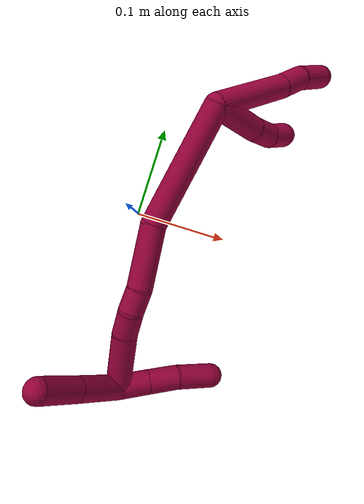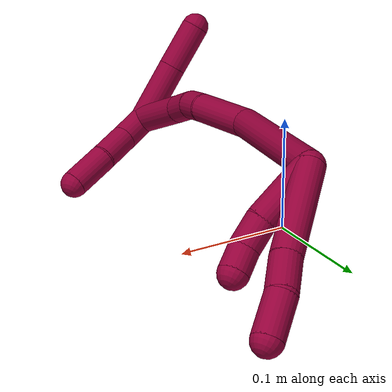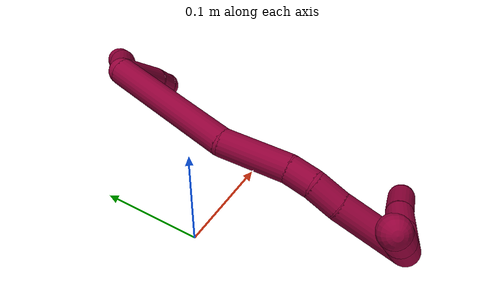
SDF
<sdf version="1.7">
 <world name="default">
  <model name="8">
   <static>0</static>
   <link name="8">
    <collision name="collision-cylinder-e_1_2_8">
     <pose>0.003342 0.009106 -0.041224 -2.92418 0.079002 -0.694894</pose>
     <geometry><cylinder><radius>0.0125</radius><length>0.084701</length></cylinder></geometry>
     <surface>
      <friction><ode><mu>1.16</mu><mu2>1.16</mu2><slip1>0</slip1><slip2>0</slip2></ode></friction>
      <contact><ode><kp>1e+06</kp><kd>1</kd><max_vel>0</max_vel><min_depth>0.001</min_depth></ode></contact>
     </surface>
    </collision>
    <visual name="visual-cylinder-e_1_2_8">
     <pose>0.003342 0.009106 -0.041224 -2.92418 0.079002 -0.694894</pose>
     <geometry><cylinder><radius>0.0125</radius><length>0.084701</length></cylinder></geometry>
     <material><ambient>0.584314 0 0.227451 1</ambient></material>
    </visual>
    <collision name="collision-cylinder-e_2_8_9">
     <pose>0.007262 0.022906 -0.096802 -2.82556 0.038206 -0.238659</pose>
     <geometry><cylinder><radius>0.0125</radius><length>0.030224</length></cylinder></geometry>
     <surface>
      <friction><ode><mu>1.16</mu><mu2>1.16</mu2><slip1>0</slip1><slip2>0</slip2></ode></friction>
      <contact><ode><kp>1e+06</kp><kd>1</kd><max_vel>0</max_vel><min_depth>0.001</min_depth></ode></contact>
     </surface>
    </collision>
    <visual name="visual-cylinder-e_2_8_9">
     <pose>0.007262 0.022906 -0.096802 -2.82556 0.038206 -0.238659</pose>
     <geometry><cylinder><radius>0.0125</radius><length>0.030224</length></cylinder></geometry>
     <material><ambient>0.584314 0 0.227451 1</ambient></material>
    </visual>
    <collision name="collision-cylinder-e_3_9_6">
     <pose>0.00679 0.029215 -0.128587 -3.04918 -0.059841 1.1489</pose>
     <geometry><cylinder><radius>0.0125</radius><length>0.035075</length></cylinder></geometry>
     <surface>
      <friction><ode><mu>1.16</mu><mu2>1.16</mu2><slip1>0</slip1><slip2>0</slip2></ode></friction>
      <contact><ode><kp>1e+06</kp><kd>1</kd><max_vel>0</max_vel><min_depth>0.001</min_depth></ode></contact>
     </surface>
    </collision>
    <visual name="visual-cylinder-e_3_9_6">
     <pose>0.00679 0.029215 -0.128587 -3.04918 -0.059841 1.1489</pose>
     <geometry><cylinder><radius>0.0125</radius><length>0.035075</length></cylinder></geometry>
     <material><ambient>0.584314 0 0.227451 1</ambient></material>
    </visual>
    <collision name="collision-cylinder-e_1_2_10">
     <pose>-0.002452 -0.011218 -0.024116 2.70619 -0.091948 -0.410113</pose>
     <geometry><cylinder><radius>0.0125</radius><length>0.05342</length></cylinder></geometry>
     <surface>
      <friction><ode><mu>1.16</mu><mu2>1.16</mu2><slip1>0</slip1><slip2>0</slip2></ode></friction>
      <contact><ode><kp>1e+06</kp><kd>1</kd><max_vel>0</max_vel><min_depth>0.001</min_depth></ode></contact>
     </surface>
    </collision>
    <visual name="visual-cylinder-e_1_2_10">
     <pose>-0.002452 -0.011218 -0.024116 2.70619 -0.091948 -0.410113</pose>
     <geometry><cylinder><radius>0.0125</radius><length>0.05342</length></cylinder></geometry>
     <material><ambient>0.584314 0 0.227451 1</ambient></material>
    </visual>
    <collision name="collision-cylinder-e_2_10_11">
     <pose>-0.006996 -0.025652 -0.060242 2.87996 -0.166635 -1.13115</pose>
     <geometry><cylinder><radius>0.0125</radius><length>0.025216</length></cylinder></geometry>
     <surface>
      <friction><ode><mu>1.16</mu><mu2>1.16</mu2><slip1>0</slip1><slip2>0</slip2></ode></friction>
      <contact><ode><kp>1e+06</kp><kd>1</kd><max_vel>0</max_vel><min_depth>0.001</min_depth></ode></contact>
     </surface>
    </collision>
    <visual name="visual-cylinder-e_2_10_11">
     <pose>-0.006996 -0.025652 -0.060242 2.87996 -0.166635 -1.13115</pose>
     <geometry><cylinder><radius>0.0125</radius><length>0.025216</length></cylinder></geometry>
     <material><ambient>0.584314 0 0.227451 1</ambient></material>
    </visual>
    <collision name="collision-cylinder-e_3_11_5">
     <pose>-0.009469 -0.028756 -0.082927 -3.13115 -0.03574 2.5731</pose>
     <geometry><cylinder><radius>0.0125</radius><length>0.021364</length></cylinder></geometry>
     <surface>
      <friction><ode><mu>1.16</mu><mu2>1.16</mu2><slip1>0</slip1><slip2>0</slip2></ode></friction>
      <contact><ode><kp>1e+06</kp><kd>1</kd><max_vel>0</max_vel><min_depth>0.001</min_depth></ode></contact>
     </surface>
    </collision>
    <visual name="visual-cylinder-e_3_11_5">
     <pose>-0.009469 -0.028756 -0.082927 -3.13115 -0.03574 2.5731</pose>
     <geometry><cylinder><radius>0.0125</radius><length>0.021364</length></cylinder></geometry>
     <material><ambient>0.584314 0 0.227451 1</ambient></material>
    </visual>
    <collision name="collision-cylinder-e_1_2_12">
     <pose>-0.020967 -0.05157 0.030406 1.03806 -0.336874 -0.19368</pose>
     <geometry><cylinder><radius>0.0125</radius><length>0.126864</length></cylinder></geometry>
     <surface>
      <friction><ode><mu>1.16</mu><mu2>1.16</mu2><slip1>0</slip1><slip2>0</slip2></ode></friction>
      <contact><ode><kp>1e+06</kp><kd>1</kd><max_vel>0</max_vel><min_depth>0.001</min_depth></ode></contact>
     </surface>
    </collision>
    <visual name="visual-cylinder-e_1_2_12">
     <pose>-0.020967 -0.05157 0.030406 1.03806 -0.336874 -0.19368</pose>
     <geometry><cylinder><radius>0.0125</radius><length>0.126864</length></cylinder></geometry>
     <material><ambient>0.584314 0 0.227451 1</ambient></material>
    </visual>
    <collision name="collision-cylinder-e_2_12_13">
     <pose>-0.046894 -0.131964 0.070042 1.26088 -0.162451 -0.118677</pose>
     <geometry><cylinder><radius>0.0125</radius><length>0.061338</length></cylinder></geometry>
     <surface>
      <friction><ode><mu>1.16</mu><mu2>1.16</mu2><slip1>0</slip1><slip2>0</slip2></ode></friction>
      <contact><ode><kp>1e+06</kp><kd>1</kd><max_vel>0</max_vel><min_depth>0.001</min_depth></ode></contact>
     </surface>
    </collision>
    <visual name="visual-cylinder-e_2_12_13">
     <pose>-0.046894 -0.131964 0.070042 1.26088 -0.162451 -0.118677</pose>
     <geometry><cylinder><radius>0.0125</radius><length>0.061338</length></cylinder></geometry>
     <material><ambient>0.584314 0 0.227451 1</ambient></material>
    </visual>
    <collision name="collision-cylinder-e_3_13_14">
     <pose>-0.055803 -0.170975 0.083249 1.19863 -0.346552 -0.238008</pose>
     <geometry><cylinder><radius>0.0125</radius><length>0.023256</length></cylinder></geometry>
     <surface>
      <friction><ode><mu>1.16</mu><mu2>1.16</mu2><slip1>0</slip1><slip2>0</slip2></ode></friction>
      <contact><ode><kp>1e+06</kp><kd>1</kd><max_vel>0</max_vel><min_depth>0.001</min_depth></ode></contact>
     </surface>
    </collision>
    <visual name="visual-cylinder-e_3_13_14">
     <pose>-0.055803 -0.170975 0.083249 1.19863 -0.346552 -0.238008</pose>
     <geometry><cylinder><radius>0.0125</radius><length>0.023256</length></cylinder></geometry>
     <material><ambient>0.584314 0 0.227451 1</ambient></material>
    </visual>
    <collision name="collision-cylinder-e_4_14_15">
     <pose>-0.066072 -0.192207 0.08879 1.43012 -0.515426 -0.450006</pose>
     <geometry><cylinder><radius>0.0125</radius><length>0.025639</length></cylinder></geometry>
     <surface>
      <friction><ode><mu>1.16</mu><mu2>1.16</mu2><slip1>0</slip1><slip2>0</slip2></ode></friction>
      <contact><ode><kp>1e+06</kp><kd>1</kd><max_vel>0</max_vel><min_depth>0.001</min_depth></ode></contact>
     </surface>
    </collision>
    <visual name="visual-cylinder-e_4_14_15">
     <pose>-0.066072 -0.192207 0.08879 1.43012 -0.515426 -0.450006</pose>
     <geometry><cylinder><radius>0.0125</radius><length>0.025639</length></cylinder></geometry>
     <material><ambient>0.584314 0 0.227451 1</ambient></material>
    </visual>
    <collision name="collision-cylinder-e_5_15_1">
     <pose>-0.085561 -0.231787 0.091542 1.52918 -0.432081 -0.414974</pose>
     <geometry><cylinder><radius>0.0125</radius><length>0.062903</length></cylinder></geometry>
     <surface>
      <friction><ode><mu>1.16</mu><mu2>1.16</mu2><slip1>0</slip1><slip2>0</slip2></ode></friction>
      <contact><ode><kp>1e+06</kp><kd>1</kd><max_vel>0</max_vel><min_depth>0.001</min_depth></ode></contact>
     </surface>
    </collision>
    <visual name="visual-cylinder-e_5_15_1">
     <pose>-0.085561 -0.231787 0.091542 1.52918 -0.432081 -0.414974</pose>
     <geometry><cylinder><radius>0.0125</radius><length>0.062903</length></cylinder></geometry>
     <material><ambient>0.584314 0 0.227451 1</ambient></material>
    </visual>
    <collision name="collision-cylinder-e_1_1_16">
     <pose>-0.094277 -0.261491 0.077988 3.06259 0.292618 2.61756</pose>
     <geometry><cylinder><radius>0.0125</radius><length>0.030891</length></cylinder></geometry>
     <surface>
      <friction><ode><mu>1.16</mu><mu2>1.16</mu2><slip1>0</slip1><slip2>0</slip2></ode></friction>
      <contact><ode><kp>1e+06</kp><kd>1</kd><max_vel>0</max_vel><min_depth>0.001</min_depth></ode></contact>
     </surface>
    </collision>
    <visual name="visual-cylinder-e_1_1_16">
     <pose>-0.094277 -0.261491 0.077988 3.06259 0.292618 2.61756</pose>
     <geometry><cylinder><radius>0.0125</radius><length>0.030891</length></cylinder></geometry>
     <material><ambient>0.584314 0 0.227451 1</ambient></material>
    </visual>
    <collision name="collision-cylinder-e_2_16_17">
     <pose>-0.085218 -0.263827 0.048625 3.0618 0.304115 2.63196</pose>
     <geometry><cylinder><radius>0.0125</radius><length>0.030743</length></cylinder></geometry>
     <surface>
      <friction><ode><mu>1.16</mu><mu2>1.16</mu2><slip1>0</slip1><slip2>0</slip2></ode></friction>
      <contact><ode><kp>1e+06</kp><kd>1</kd><max_vel>0</max_vel><min_depth>0.001</min_depth></ode></contact>
     </surface>
    </collision>
    <visual name="visual-cylinder-e_2_16_17">
     <pose>-0.085218 -0.263827 0.048625 3.0618 0.304115 2.63196</pose>
     <geometry><cylinder><radius>0.0125</radius><length>0.030743</length></cylinder></geometry>
     <material><ambient>0.584314 0 0.227451 1</ambient></material>
    </visual>
    <collision name="collision-cylinder-e_3_17_4">
     <pose>-0.076421 -0.268901 0.015699 2.9314 0.220436 1.61872</pose>
     <geometry><cylinder><radius>0.0125</radius><length>0.038366</length></cylinder></geometry>
     <surface>
      <friction><ode><mu>1.16</mu><mu2>1.16</mu2><slip1>0</slip1><slip2>0</slip2></ode></friction>
      <contact><ode><kp>1e+06</kp><kd>1</kd><max_vel>0</max_vel><min_depth>0.001</min_depth></ode></contact>
     </surface>
    </collision>
    <visual name="visual-cylinder-e_3_17_4">
     <pose>-0.076421 -0.268901 0.015699 2.9314 0.220436 1.61872</pose>
     <geometry><cylinder><radius>0.0125</radius><length>0.038366</length></cylinder></geometry>
     <material><ambient>0.584314 0 0.227451 1</ambient></material>
    </visual>
    <collision name="collision-cylinder-e_1_1_18">
     <pose>-0.089583 -0.251314 0.117816 -0.344806 0.330642 -0.058089</pose>
     <geometry><cylinder><radius>0.0125</radius><length>0.056361</length></cylinder></geometry>
     <surface>
      <friction><ode><mu>1.16</mu><mu2>1.16</mu2><slip1>0</slip1><slip2>0</slip2></ode></friction>
      <contact><ode><kp>1e+06</kp><kd>1</kd><max_vel>0</max_vel><min_depth>0.001</min_depth></ode></contact>
     </surface>
    </collision>
    <visual name="visual-cylinder-e_1_1_18">
     <pose>-0.089583 -0.251314 0.117816 -0.344806 0.330642 -0.058089</pose>
     <geometry><cylinder><radius>0.0125</radius><length>0.056361</length></cylinder></geometry>
     <material><ambient>0.584314 0 0.227451 1</ambient></material>
    </visual>
    <collision name="collision-cylinder-e_2_18_3">
     <pose>-0.073437 -0.235084 0.162266 -0.356891 0.326478 -0.059396</pose>
     <geometry><cylinder><radius>0.0125</radius><length>0.043639</length></cylinder></geometry>
     <surface>
      <friction><ode><mu>1.16</mu><mu2>1.16</mu2><slip1>0</slip1><slip2>0</slip2></ode></friction>
      <contact><ode><kp>1e+06</kp><kd>1</kd><max_vel>0</max_vel><min_depth>0.001</min_depth></ode></contact>
     </surface>
    </collision>
    <visual name="visual-cylinder-e_2_18_3">
     <pose>-0.073437 -0.235084 0.162266 -0.356891 0.326478 -0.059396</pose>
     <geometry><cylinder><radius>0.0125</radius><length>0.043639</length></cylinder></geometry>
     <material><ambient>0.584314 0 0.227451 1</ambient></material>
    </visual>
    <collision name="collision-sphere-3">
     <pose>-0.066439 -0.227864 0.18163 0 -0 0</pose>
     <geometry><sphere><radius>0.0125</radius></sphere></geometry>
     <surface>
      <friction><ode><mu>1.16</mu><mu2>1.16</mu2><slip1>0</slip1><slip2>0</slip2></ode></friction>
      <contact><ode><kp>1e+06</kp><kd>1</kd><max_vel>0</max_vel><min_depth>0.001</min_depth></ode></contact>
     </surface>
    </collision>
    <visual name="visual-sphere-3">
     <pose>-0.066439 -0.227864 0.18163 0 -0 0</pose>
     <geometry><sphere><radius>0.0125</radius></sphere></geometry>
     <material><ambient>0.584314 0 0.227451 1</ambient></material>
    </visual>
    <collision name="collision-sphere-11">
     <pose>-0.009087 -0.028868 -0.072252 0 -0 0</pose>
     <geometry><sphere><radius>0.0125</radius></sphere></geometry>
     <surface>
      <friction><ode><mu>1.16</mu><mu2>1.16</mu2><slip1>0</slip1><slip2>0</slip2></ode></friction>
      <contact><ode><kp>1e+06</kp><kd>1</kd><max_vel>0</max_vel><min_depth>0.001</min_depth></ode></contact>
     </surface>
    </collision>
    <visual name="visual-sphere-11">
     <pose>-0.009087 -0.028868 -0.072252 0 -0 0</pose>
     <geometry><sphere><radius>0.0125</radius></sphere></geometry>
     <material><ambient>0.584314 0 0.227451 1</ambient></material>
    </visual>
    <collision name="collision-sphere-10">
     <pose>-0.004905 -0.022436 -0.048231 0 -0 0</pose>
     <geometry><sphere><radius>0.0125</radius></sphere></geometry>
     <surface>
      <friction><ode><mu>1.16</mu><mu2>1.16</mu2><slip1>0</slip1><slip2>0</slip2></ode></friction>
      <contact><ode><kp>1e+06</kp><kd>1</kd><max_vel>0</max_vel><min_depth>0.001</min_depth></ode></contact>
     </surface>
    </collision>
    <visual name="visual-sphere-10">
     <pose>-0.004905 -0.022436 -0.048231 0 -0 0</pose>
     <geometry><sphere><radius>0.0125</radius></sphere></geometry>
     <material><ambient>0.584314 0 0.227451 1</ambient></material>
    </visual>
    <collision name="collision-sphere-6">
     <pose>0.005741 0.030831 -0.146018 0 -0 0</pose>
     <geometry><sphere><radius>0.0125</radius></sphere></geometry>
     <surface>
      <friction><ode><mu>1.16</mu><mu2>1.16</mu2><slip1>0</slip1><slip2>0</slip2></ode></friction>
      <contact><ode><kp>1e+06</kp><kd>1</kd><max_vel>0</max_vel><min_depth>0.001</min_depth></ode></contact>
     </surface>
    </collision>
    <visual name="visual-sphere-6">
     <pose>0.005741 0.030831 -0.146018 0 -0 0</pose>
     <geometry><sphere><radius>0.0125</radius></sphere></geometry>
     <material><ambient>0.584314 0 0.227451 1</ambient></material>
    </visual>
    <collision name="collision-sphere-9">
     <pose>0.007839 0.0276 -0.111155 0 -0 0</pose>
     <geometry><sphere><radius>0.0125</radius></sphere></geometry>
     <surface>
      <friction><ode><mu>1.16</mu><mu2>1.16</mu2><slip1>0</slip1><slip2>0</slip2></ode></friction>
      <contact><ode><kp>1e+06</kp><kd>1</kd><max_vel>0</max_vel><min_depth>0.001</min_depth></ode></contact>
     </surface>
    </collision>
    <visual name="visual-sphere-9">
     <pose>0.007839 0.0276 -0.111155 0 -0 0</pose>
     <geometry><sphere><radius>0.0125</radius></sphere></geometry>
     <material><ambient>0.584314 0 0.227451 1</ambient></material>
    </visual>
    <collision name="collision-sphere-2">
     <geometry><sphere><radius>0.0125</radius></sphere></geometry>
     <surface>
      <friction><ode><mu>1.16</mu><mu2>1.16</mu2><slip1>0</slip1><slip2>0</slip2></ode></friction>
      <contact><ode><kp>1e+06</kp><kd>1</kd><max_vel>0</max_vel><min_depth>0.001</min_depth></ode></contact>
     </surface>
    </collision>
    <visual name="visual-sphere-2">
     <geometry><sphere><radius>0.0125</radius></sphere></geometry>
     <material><ambient>0.584314 0 0.227451 1</ambient></material>
    </visual>
    <collision name="collision-sphere-8">
     <pose>0.006685 0.018213 -0.082449 0 -0 0</pose>
     <geometry><sphere><radius>0.0125</radius></sphere></geometry>
     <surface>
      <friction><ode><mu>1.16</mu><mu2>1.16</mu2><slip1>0</slip1><slip2>0</slip2></ode></friction>
      <contact><ode><kp>1e+06</kp><kd>1</kd><max_vel>0</max_vel><min_depth>0.001</min_depth></ode></contact>
     </surface>
    </collision>
    <visual name="visual-sphere-8">
     <pose>0.006685 0.018213 -0.082449 0 -0 0</pose>
     <geometry><sphere><radius>0.0125</radius></sphere></geometry>
     <material><ambient>0.584314 0 0.227451 1</ambient></material>
    </visual>
    <collision name="collision-sphere-5">
     <pose>-0.009851 -0.028645 -0.093601 0 -0 0</pose>
     <geometry><sphere><radius>0.0125</radius></sphere></geometry>
     <surface>
      <friction><ode><mu>1.16</mu><mu2>1.16</mu2><slip1>0</slip1><slip2>0</slip2></ode></friction>
      <contact><ode><kp>1e+06</kp><kd>1</kd><max_vel>0</max_vel><min_depth>0.001</min_depth></ode></contact>
     </surface>
    </collision>
    <visual name="visual-sphere-5">
     <pose>-0.009851 -0.028645 -0.093601 0 -0 0</pose>
     <geometry><sphere><radius>0.0125</radius></sphere></geometry>
     <material><ambient>0.584314 0 0.227451 1</ambient></material>
    </visual>
    <collision name="collision-sphere-12">
     <pose>-0.041933 -0.103141 0.060812 0 -0 0</pose>
     <geometry><sphere><radius>0.0125</radius></sphere></geometry>
     <surface>
      <friction><ode><mu>1.16</mu><mu2>1.16</mu2><slip1>0</slip1><slip2>0</slip2></ode></friction>
      <contact><ode><kp>1e+06</kp><kd>1</kd><max_vel>0</max_vel><min_depth>0.001</min_depth></ode></contact>
     </surface>
    </collision>
    <visual name="visual-sphere-12">
     <pose>-0.041933 -0.103141 0.060812 0 -0 0</pose>
     <geometry><sphere><radius>0.0125</radius></sphere></geometry>
     <material><ambient>0.584314 0 0.227451 1</ambient></material>
    </visual>
    <collision name="collision-sphere-13">
     <pose>-0.051854 -0.160787 0.079272 0 -0 0</pose>
     <geometry><sphere><radius>0.0125</radius></sphere></geometry>
     <surface>
      <friction><ode><mu>1.16</mu><mu2>1.16</mu2><slip1>0</slip1><slip2>0</slip2></ode></friction>
      <contact><ode><kp>1e+06</kp><kd>1</kd><max_vel>0</max_vel><min_depth>0.001</min_depth></ode></contact>
     </surface>
    </collision>
    <visual name="visual-sphere-13">
     <pose>-0.051854 -0.160787 0.079272 0 -0 0</pose>
     <geometry><sphere><radius>0.0125</radius></sphere></geometry>
     <material><ambient>0.584314 0 0.227451 1</ambient></material>
    </visual>
    <collision name="collision-sphere-14">
     <pose>-0.059753 -0.181163 0.087226 0 -0 0</pose>
     <geometry><sphere><radius>0.0125</radius></sphere></geometry>
     <surface>
      <friction><ode><mu>1.16</mu><mu2>1.16</mu2><slip1>0</slip1><slip2>0</slip2></ode></friction>
      <contact><ode><kp>1e+06</kp><kd>1</kd><max_vel>0</max_vel><min_depth>0.001</min_depth></ode></contact>
     </surface>
    </collision>
    <visual name="visual-sphere-14">
     <pose>-0.059753 -0.181163 0.087226 0 -0 0</pose>
     <geometry><sphere><radius>0.0125</radius></sphere></geometry>
     <material><ambient>0.584314 0 0.227451 1</ambient></material>
    </visual>
    <collision name="collision-sphere-15">
     <pose>-0.072391 -0.203251 0.090354 0 -0 0</pose>
     <geometry><sphere><radius>0.0125</radius></sphere></geometry>
     <surface>
      <friction><ode><mu>1.16</mu><mu2>1.16</mu2><slip1>0</slip1><slip2>0</slip2></ode></friction>
      <contact><ode><kp>1e+06</kp><kd>1</kd><max_vel>0</max_vel><min_depth>0.001</min_depth></ode></contact>
     </surface>
    </collision>
    <visual name="visual-sphere-15">
     <pose>-0.072391 -0.203251 0.090354 0 -0 0</pose>
     <geometry><sphere><radius>0.0125</radius></sphere></geometry>
     <material><ambient>0.584314 0 0.227451 1</ambient></material>
    </visual>
    <collision name="collision-sphere-1">
     <pose>-0.098732 -0.260324 0.092731 0 -0 0</pose>
     <geometry><sphere><radius>0.0125</radius></sphere></geometry>
     <surface>
      <friction><ode><mu>1.16</mu><mu2>1.16</mu2><slip1>0</slip1><slip2>0</slip2></ode></friction>
      <contact><ode><kp>1e+06</kp><kd>1</kd><max_vel>0</max_vel><min_depth>0.001</min_depth></ode></contact>
     </surface>
    </collision>
    <visual name="visual-sphere-1">
     <pose>-0.098732 -0.260324 0.092731 0 -0 0</pose>
     <geometry><sphere><radius>0.0125</radius></sphere></geometry>
     <material><ambient>0.584314 0 0.227451 1</ambient></material>
    </visual>
    <collision name="collision-sphere-18">
     <pose>-0.080434 -0.242305 0.142901 0 -0 0</pose>
     <geometry><sphere><radius>0.0125</radius></sphere></geometry>
     <surface>
      <friction><ode><mu>1.16</mu><mu2>1.16</mu2><slip1>0</slip1><slip2>0</slip2></ode></friction>
      <contact><ode><kp>1e+06</kp><kd>1</kd><max_vel>0</max_vel><min_depth>0.001</min_depth></ode></contact>
     </surface>
    </collision>
    <visual name="visual-sphere-18">
     <pose>-0.080434 -0.242305 0.142901 0 -0 0</pose>
     <geometry><sphere><radius>0.0125</radius></sphere></geometry>
     <material><ambient>0.584314 0 0.227451 1</ambient></material>
    </visual>
    <collision name="collision-sphere-16">
     <pose>-0.089821 -0.262658 0.063245 0 -0 0</pose>
     <geometry><sphere><radius>0.0125</radius></sphere></geometry>
     <surface>
      <friction><ode><mu>1.16</mu><mu2>1.16</mu2><slip1>0</slip1><slip2>0</slip2></ode></friction>
      <contact><ode><kp>1e+06</kp><kd>1</kd><max_vel>0</max_vel><min_depth>0.001</min_depth></ode></contact>
     </surface>
    </collision>
    <visual name="visual-sphere-16">
     <pose>-0.089821 -0.262658 0.063245 0 -0 0</pose>
     <geometry><sphere><radius>0.0125</radius></sphere></geometry>
     <material><ambient>0.584314 0 0.227451 1</ambient></material>
    </visual>
    <collision name="collision-sphere-17">
     <pose>-0.080615 -0.264996 0.034006 0 -0 0</pose>
     <geometry><sphere><radius>0.0125</radius></sphere></geometry>
     <surface>
      <friction><ode><mu>1.16</mu><mu2>1.16</mu2><slip1>0</slip1><slip2>0</slip2></ode></friction>
      <contact><ode><kp>1e+06</kp><kd>1</kd><max_vel>0</max_vel><min_depth>0.001</min_depth></ode></contact>
     </surface>
    </collision>
    <visual name="visual-sphere-17">
     <pose>-0.080615 -0.264996 0.034006 0 -0 0</pose>
     <geometry><sphere><radius>0.0125</radius></sphere></geometry>
     <material><ambient>0.584314 0 0.227451 1</ambient></material>
    </visual>
    <collision name="collision-sphere-4">
     <pose>-0.072226 -0.272807 -0.002608 0 -0 0</pose>
     <geometry><sphere><radius>0.0125</radius></sphere></geometry>
     <surface>
      <friction><ode><mu>1.16</mu><mu2>1.16</mu2><slip1>0</slip1><slip2>0</slip2></ode></friction>
      <contact><ode><kp>1e+06</kp><kd>1</kd><max_vel>0</max_vel><min_depth>0.001</min_depth></ode></contact>
     </surface>
    </collision>
    <visual name="visual-sphere-4">
     <pose>-0.072226 -0.272807 -0.002608 0 -0 0</pose>
     <geometry><sphere><radius>0.0125</radius></sphere></geometry>
     <material><ambient>0.584314 0 0.227451 1</ambient></material>
    </visual>
    <inertial>
     <pose>-0.040529 -0.117895 0.027794 0 -0 0</pose>
     <mass>0.75</mass>
     <inertia><ixx>0.000207</ixx><ixy>0</ixy><ixz>0</ixz><iyy>-8e-06</iyy><iyz>0</iyz><izz>0.000222</izz></inertia>
    </inertial>
   </link>
   <pose>0.054437 0.112164 0.108646 0.201186 -0.934739 0.270489</pose>
  </model>
 </world>
</sdf>
